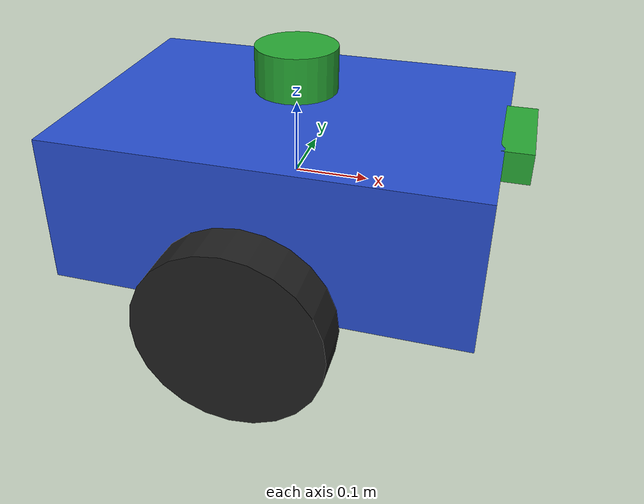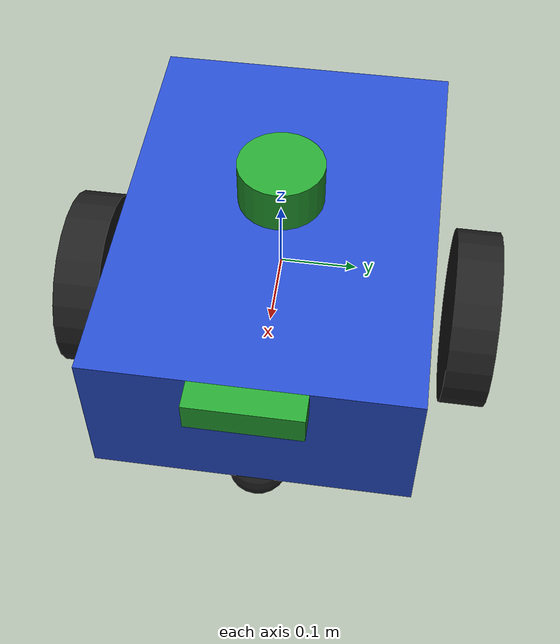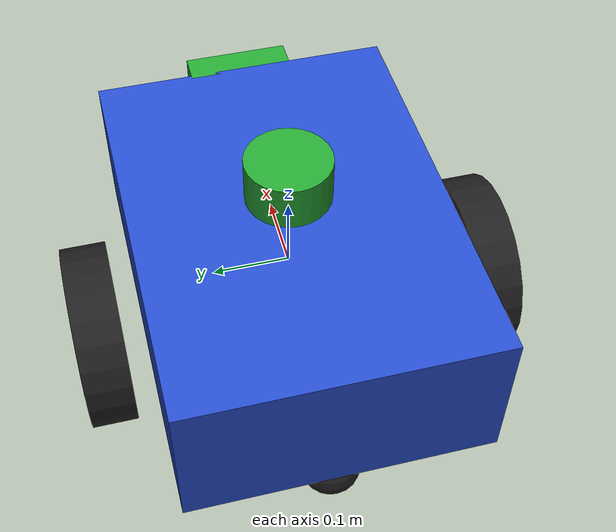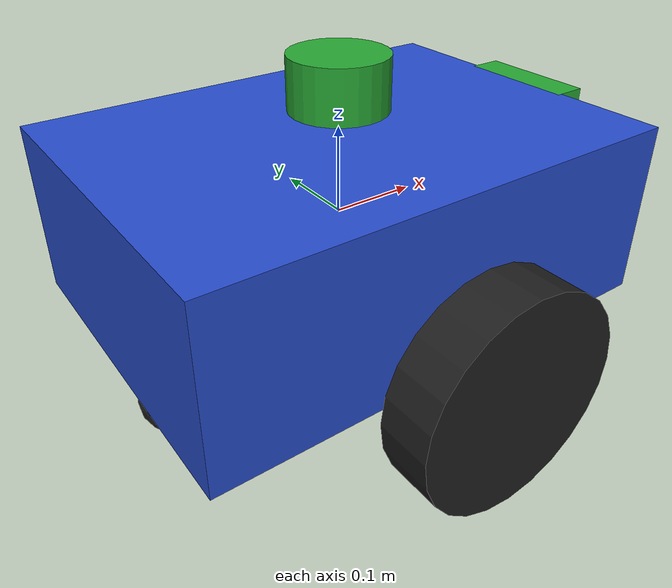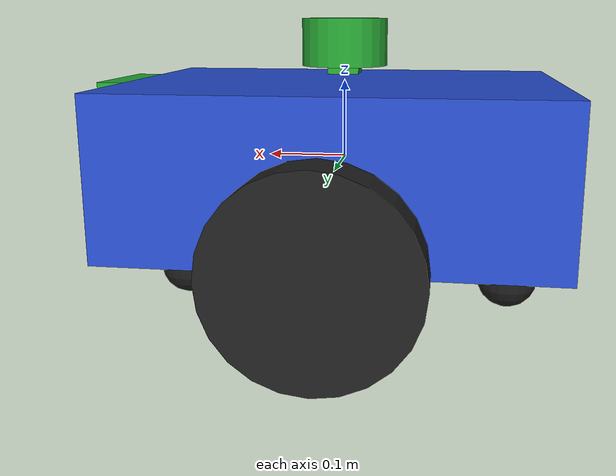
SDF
<sdf version='1.9'>
  <model name='rover'>
    <link name='base_link'>
      <inertial>
        <pose>0 0 -0.003902439024390244 0 0 0</pose>
        <mass>8.1999999999999993</mass>
        <inertia>
          <ixx>0.086995121951219501</ixx>
          <ixy>0</ixy>
          <ixz>0</ixz>
          <iyy>0.1376751219512195</iyy>
          <iyz>0</iyz>
          <izz>0.17368</izz>
        </inertia>
      </inertial>
      <collision name='base_link_collision'>
        <pose>0 0 0 0 0 0</pose>
        <geometry>
          <box>
            <size>0.55 0.4 0.2</size>
          </box>
        </geometry>
        <surface>
          <contact>
            <ode/>
          </contact>
          <friction>
            <ode/>
          </friction>
        </surface>
      </collision>
      <collision name='base_link_fixed_joint_lump__front_caster_collision_1'>
        <pose>0.22 0 -0.16 0 0 0</pose>
        <geometry>
          <sphere>
            <radius>0.040000000000000001</radius>
          </sphere>
        </geometry>
        <surface>
          <contact>
            <ode/>
          </contact>
          <friction>
            <ode>
              <mu>0</mu>
              <mu2>0</mu2>
            </ode>
          </friction>
        </surface>
      </collision>
      <collision name='base_link_fixed_joint_lump__rear_caster_collision_2'>
        <pose>-0.22 0 -0.16 0 0 0</pose>
        <geometry>
          <sphere>
            <radius>0.040000000000000001</radius>
          </sphere>
        </geometry>
        <surface>
          <contact>
            <ode/>
          </contact>
          <friction>
            <ode>
              <mu>0</mu>
              <mu2>0</mu2>
            </ode>
          </friction>
        </surface>
      </collision>
      <visual name='base_link_visual'>
        <pose>0 0 0 0 0 0</pose>
        <geometry>
          <box>
            <size>0.55 0.4 0.2</size>
          </box>
        </geometry>
        <material>
          <script>
            <name>Gazebo/Blue</name>
            <uri>file://media/materials/scripts/gazebo.material</uri>
          </script>
          <diffuse>0.1 0.4375 0.9 1</diffuse>
          <ambient>0.1 0.4375 0.9 1</ambient>
        </material>
      </visual>
      <visual name='base_link_fixed_joint_lump__front_caster_visual_1'>
        <pose>0.22 0 -0.16 0 0 0</pose>
        <geometry>
          <sphere>
            <radius>0.040000000000000001</radius>
          </sphere>
        </geometry>
        <material>
          <script>
            <name>Gazebo/Black</name>
            <uri>file://media/materials/scripts/gazebo.material</uri>
          </script>
          <diffuse>0.15 0.175 0.2125 1</diffuse>
          <ambient>0.15 0.175 0.2125 1</ambient>
        </material>
      </visual>
      <visual name='base_link_fixed_joint_lump__rear_caster_visual_2'>
        <pose>-0.22 0 -0.16 0 0 0</pose>
        <geometry>
          <sphere>
            <radius>0.040000000000000001</radius>
          </sphere>
        </geometry>
        <material>
          <script>
            <name>Gazebo/Black</name>
            <uri>file://media/materials/scripts/gazebo.material</uri>
          </script>
          <diffuse>0.15 0.175 0.2125 1</diffuse>
          <ambient>0.15 0.175 0.2125 1</ambient>
        </material>
      </visual>
      <sensor name='base_link_contact' type='contact'>
        <always_on>true</always_on>
        <update_rate>30</update_rate>
        <contact>
          <collision>base_link_collision</collision>
          <collision>base_link_fixed_joint_lump__front_caster_collision_1</collision>
          <collision>base_link_fixed_joint_lump__rear_caster_collision_2</collision>
          <topic>/contacts/base_link</topic>
        </contact>
      </sensor>
    </link>
    <joint name='camera_link_joint' type='fixed'>
      <pose relative_to='base_link'>0.29 0 0.08 0 0 0</pose>
      <parent>base_link</parent>
      <child>camera_link</child>
      <axis>
        <dynamics>
          <spring_reference>0</spring_reference>
          <spring_stiffness>0</spring_stiffness>
        </dynamics>
        <xyz>0 0 1</xyz>
        <limit>
          <lower>-10000000000000000</lower>
          <upper>10000000000000000</upper>
        </limit>
      </axis>
      <physics>
        <ode>
          <limit>
            <cfm>0</cfm>
            <erp>0.20000000000000001</erp>
          </limit>
        </ode>
      </physics>
    </joint>
    <link name='camera_link'>
      <pose relative_to='camera_link_joint'>0 0 0 0 0 0</pose>
      <inertial>
        <pose>0 0 0 0 0 0</pose>
        <mass>0.050000000000000003</mass>
        <inertia>
          <ixx>0.00050000000000000001</ixx>
          <ixy>0</ixy>
          <ixz>0</ixz>
          <iyy>0.00075000000000000002</iyy>
          <iyz>0</iyz>
          <izz>0.001</izz>
        </inertia>
      </inertial>
      <visual name='camera_link_visual'>
        <pose>0 0 0 0 0 0</pose>
        <geometry>
          <box>
            <size>0.04 0.14 0.04</size>
          </box>
        </geometry>
        <material>
          <script>
            <name>Gazebo/Green</name>
            <uri>file://media/materials/scripts/gazebo.material</uri>
          </script>
          <diffuse>0.125 1 0.5 1</diffuse>
          <ambient>0.125 1 0.5 1</ambient>
        </material>
      </visual>
      <sensor name='astra' type='rgbd_camera'>
        <always_on>true</always_on>
        <update_rate>10</update_rate>
        <topic>/camera</topic>
        <camera>
          <horizontal_fov>1.0471999999999999</horizontal_fov>
          <image>
            <width>320</width>
            <height>240</height>
          </image>
          <clip>
            <near>0.14999999999999999</near>
            <far>6</far>
          </clip>
        </camera>
      </sensor>
    </link>
    <joint name='gps_link_joint' type='fixed'>
      <pose relative_to='base_link'>0 0 0.12 0 0 0</pose>
      <parent>base_link</parent>
      <child>gps_link</child>
      <axis>
        <dynamics>
          <spring_reference>0</spring_reference>
          <spring_stiffness>0</spring_stiffness>
        </dynamics>
        <xyz>0 0 1</xyz>
        <limit>
          <lower>-10000000000000000</lower>
          <upper>10000000000000000</upper>
        </limit>
      </axis>
      <physics>
        <ode>
          <limit>
            <cfm>0</cfm>
            <erp>0.20000000000000001</erp>
          </limit>
        </ode>
      </physics>
    </joint>
    <link name='gps_link'>
      <pose relative_to='gps_link_joint'>0 0 0 0 0 0</pose>
      <inertial>
        <pose>0 0 0 0 0 0</pose>
        <mass>0.050000000000000003</mass>
        <inertia>
          <ixx>0.00050000000000000001</ixx>
          <ixy>0</ixy>
          <ixz>0</ixz>
          <iyy>0.00075000000000000002</iyy>
          <iyz>0</iyz>
          <izz>0.001</izz>
        </inertia>
      </inertial>
      <visual name='gps_link_visual'>
        <pose>0 0 0 0 0 0</pose>
        <geometry>
          <box>
            <size>0.04 0.04 0.02</size>
          </box>
        </geometry>
        <material>
          <script>
            <name>Gazebo/Green</name>
            <uri>file://media/materials/scripts/gazebo.material</uri>
          </script>
          <diffuse>0.125 1 0.5 1</diffuse>
          <ambient>0.125 1 0.5 1</ambient>
        </material>
      </visual>
      <sensor name='gps' type='navsat'>
        <always_on>true</always_on>
        <update_rate>5</update_rate>
        <topic>/gps/fix</topic>
      </sensor>
    </link>
    <joint name='left_wheel_joint' type='revolute'>
      <pose relative_to='base_link'>0 0.26 -0.08 0 0 0</pose>
      <parent>base_link</parent>
      <child>left_wheel</child>
      <axis>
        <xyz>0 1 0</xyz>
        <limit>
          <lower>-10000000000000000</lower>
          <upper>10000000000000000</upper>
        </limit>
        <dynamics>
          <damping>0.01</damping>
          <friction>0.01</friction>
          <spring_reference>0</spring_reference>
          <spring_stiffness>0</spring_stiffness>
        </dynamics>
      </axis>
    </joint>
    <link name='left_wheel'>
      <pose relative_to='left_wheel_joint'>0 0 0 0 0 0</pose>
      <inertial>
        <pose>0 0 0 0 0 0</pose>
        <mass>0.59999999999999998</mass>
        <inertia>
          <ixx>0.0060000000000000001</ixx>
          <ixy>0</ixy>
          <ixz>0</ixz>
          <iyy>0.0089999999999999993</iyy>
          <iyz>0</iyz>
          <izz>0.012</izz>
        </inertia>
      </inertial>
      <collision name='left_wheel_collision'>
        <pose>0 0 0 1.57079632679 0 0</pose>
        <geometry>
          <cylinder>
            <length>0.059999999999999998</length>
            <radius>0.12</radius>
          </cylinder>
        </geometry>
        <surface>
          <contact>
            <ode/>
          </contact>
          <friction>
            <ode>
              <mu>1</mu>
              <mu2>1</mu2>
            </ode>
          </friction>
        </surface>
      </collision>
      <visual name='left_wheel_visual'>
        <pose>0 0 0 1.57079632679 0 0</pose>
        <geometry>
          <cylinder>
            <length>0.059999999999999998</length>
            <radius>0.12</radius>
          </cylinder>
        </geometry>
        <material>
          <script>
            <name>Gazebo/Black</name>
            <uri>file://media/materials/scripts/gazebo.material</uri>
          </script>
          <diffuse>0.15 0.175 0.2125 1</diffuse>
          <ambient>0.15 0.175 0.2125 1</ambient>
        </material>
      </visual>
      <sensor name='left_wheel_contact' type='contact'>
        <always_on>true</always_on>
        <update_rate>30</update_rate>
        <contact>
          <collision>left_wheel_collision</collision>
          <topic>/contacts/left_wheel</topic>
        </contact>
      </sensor>
    </link>
    <joint name='lidar_link_joint' type='fixed'>
      <pose relative_to='base_link'>0 0 0.15 0 0 0</pose>
      <parent>base_link</parent>
      <child>lidar_link</child>
      <axis>
        <dynamics>
          <spring_reference>0</spring_reference>
          <spring_stiffness>0</spring_stiffness>
        </dynamics>
        <xyz>0 0 1</xyz>
        <limit>
          <lower>-10000000000000000</lower>
          <upper>10000000000000000</upper>
        </limit>
      </axis>
      <physics>
        <ode>
          <limit>
            <cfm>0</cfm>
            <erp>0.20000000000000001</erp>
          </limit>
        </ode>
      </physics>
    </joint>
    <link name='lidar_link'>
      <pose relative_to='lidar_link_joint'>0 0 0 0 0 0</pose>
      <inertial>
        <pose>0 0 0 0 0 0</pose>
        <mass>0.050000000000000003</mass>
        <inertia>
          <ixx>0.00050000000000000001</ixx>
          <ixy>0</ixy>
          <ixz>0</ixz>
          <iyy>0.00075000000000000002</iyy>
          <iyz>0</iyz>
          <izz>0.001</izz>
        </inertia>
      </inertial>
      <visual name='lidar_link_visual'>
        <pose>0 0 0 0 0 0</pose>
        <geometry>
          <cylinder>
            <length>0.059999999999999998</length>
            <radius>0.055</radius>
          </cylinder>
        </geometry>
        <material>
          <script>
            <name>Gazebo/Green</name>
            <uri>file://media/materials/scripts/gazebo.material</uri>
          </script>
          <diffuse>0.125 1 0.5 1</diffuse>
          <ambient>0.125 1 0.5 1</ambient>
        </material>
      </visual>
      <sensor name='lidar' type='gpu_lidar'>
        <always_on>true</always_on>
        <update_rate>10</update_rate>
        <topic>/scan</topic>
        <visualize>false</visualize>
        <lidar>
          <scan>
            <horizontal>
              <samples>360</samples>
              <resolution>1</resolution>
              <min_angle>-3.1415926535897931</min_angle>
              <max_angle>3.1415926535897931</max_angle>
            </horizontal>
          </scan>
          <range>
            <min>0.12</min>
            <max>12</max>
            <resolution>0.01</resolution>
          </range>
        </lidar>
      </sensor>
    </link>
    <joint name='right_wheel_joint' type='revolute'>
      <pose relative_to='base_link'>0 -0.26 -0.08 0 0 0</pose>
      <parent>base_link</parent>
      <child>right_wheel</child>
      <axis>
        <xyz>0 1 0</xyz>
        <limit>
          <lower>-10000000000000000</lower>
          <upper>10000000000000000</upper>
        </limit>
        <dynamics>
          <damping>0.01</damping>
          <friction>0.01</friction>
          <spring_reference>0</spring_reference>
          <spring_stiffness>0</spring_stiffness>
        </dynamics>
      </axis>
    </joint>
    <link name='right_wheel'>
      <pose relative_to='right_wheel_joint'>0 0 0 0 0 0</pose>
      <inertial>
        <pose>0 0 0 0 0 0</pose>
        <mass>0.59999999999999998</mass>
        <inertia>
          <ixx>0.0060000000000000001</ixx>
          <ixy>0</ixy>
          <ixz>0</ixz>
          <iyy>0.0089999999999999993</iyy>
          <iyz>0</iyz>
          <izz>0.012</izz>
        </inertia>
      </inertial>
      <collision name='right_wheel_collision'>
        <pose>0 0 0 1.57079632679 0 0</pose>
        <geometry>
          <cylinder>
            <length>0.059999999999999998</length>
            <radius>0.12</radius>
          </cylinder>
        </geometry>
        <surface>
          <contact>
            <ode/>
          </contact>
          <friction>
            <ode>
              <mu>1</mu>
              <mu2>1</mu2>
            </ode>
          </friction>
        </surface>
      </collision>
      <visual name='right_wheel_visual'>
        <pose>0 0 0 1.57079632679 0 0</pose>
        <geometry>
          <cylinder>
            <length>0.059999999999999998</length>
            <radius>0.12</radius>
          </cylinder>
        </geometry>
        <material>
          <script>
            <name>Gazebo/Black</name>
            <uri>file://media/materials/scripts/gazebo.material</uri>
          </script>
          <diffuse>0.15 0.175 0.2125 1</diffuse>
          <ambient>0.15 0.175 0.2125 1</ambient>
        </material>
      </visual>
      <sensor name='right_wheel_contact' type='contact'>
        <always_on>true</always_on>
        <update_rate>30</update_rate>
        <contact>
          <collision>right_wheel_collision</collision>
          <topic>/contacts/right_wheel</topic>
        </contact>
      </sensor>
    </link>
    <plugin name='ignition::gazebo::systems::DiffDrive' filename='ignition-gazebo-diff-drive-system'>
      <left_joint>left_wheel_joint</left_joint>
      <right_joint>right_wheel_joint</right_joint>
      <wheel_separation>0.52</wheel_separation>
      <wheel_radius>0.12</wheel_radius>
      <topic>/cmd_vel</topic>
      <odom_topic>/odom</odom_topic>
      <tf_topic>/tf</tf_topic>
      <frame_id>odom</frame_id>
      <child_frame_id>base_link</child_frame_id>
      <odom_publish_frequency>30</odom_publish_frequency>
      <max_linear_acceleration>0.5</max_linear_acceleration>
      <max_angular_acceleration>1.5</max_angular_acceleration>
    </plugin>
    <plugin name='ignition::gazebo::systems::JointStatePublisher' filename='ignition-gazebo-joint-state-publisher-system'>
      <topic>/joint_states</topic>
      <joint_name>left_wheel_joint</joint_name>
      <joint_name>right_wheel_joint</joint_name>
    </plugin>
    <frame name='front_caster_joint' attached_to='base_link'>
      <pose>0.22 0 -0.16 0 -0 0</pose>
    </frame>
    <frame name='front_caster' attached_to='front_caster_joint'/>
    <frame name='rear_caster_joint' attached_to='base_link'>
      <pose>-0.22 0 -0.16 0 -0 0</pose>
    </frame>
    <frame name='rear_caster' attached_to='rear_caster_joint'/>
    <frame name='camera_optical_joint' attached_to='camera_link'>
      <pose>0 0 0 -1.5708 -0 -1.5708</pose>
    </frame>
    <frame name='camera_optical_link' attached_to='camera_optical_joint'/>
  </model>
</sdf>
